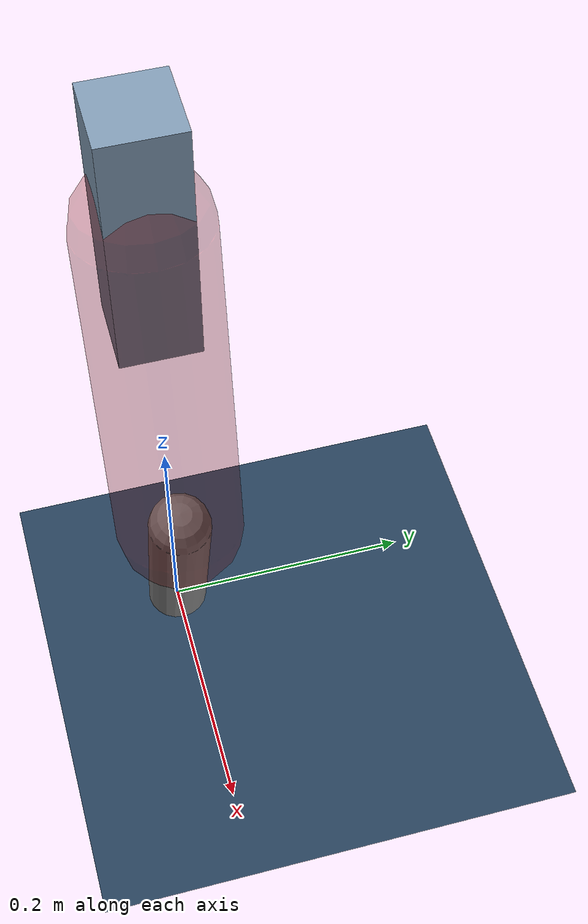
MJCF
<mujoco model="Hopper2D">
	<compiler inertiafromgeom="true" angle="radian" />
	<option timestep="0.001" integrator="implicit" cone="elliptic" solver="Newton" tolerance="1e-10" />

	<default>
		<geom contype="1" conaffinity="1" condim="3" friction="2 0.005 0.0001" solref="0.005 1" />
		<joint limited="true" damping="0.1" />
	</default>

	<asset>
		<texture name="skybox" type="skybox" builtin="gradient" rgb1=".4 .6 .8" rgb2="0 0 0" width="800" height="800" />
		<texture name="grid" type="2d" builtin="checker" rgb1=".1 .2 .3" rgb2=".2 .3 .4" width="300" height="300" mark="edge" markrgb=".2 .3 .4" />
		<material name="ground" texture="grid" texrepeat="1 1" texuniform="true" reflectance="0.1" />
		<material name="leg" rgba="0.5 0.6 0.7 1" />
	</asset>

	<worldbody>

		<geom name="floor" type="plane" size="5 5 0.25" material="ground" />

		<light directional="false" diffuse="0.8 0.8 0.8" specular="0.3 0.3 0.3" pos="0 0 2" dir="0 0 -1" />
		<light mode="targetbodycom" target="base" directional="false" diffuse="0.8 0.8 0.8" specular="0.3 0.3 0.3" pos="0 0 2" dir="0 0 -1" />

		<camera name="fixed" pos="0 -2 1" xyaxes="1 0 0 0 0 1" />
		<camera name="tracking" mode="trackcom" pos="0 -3 1" />

		<body name="root" pos="0 0 0.4528493251511524">
			<joint name="slide_x" type="slide" axis="1 0 0" range="-100 100" />
			<joint name="slide_z" type="slide" axis="0 0 1" range="0 10" />

			<body name="base" pos="0 0 0">
				<geom name="torso" type="box" size="0.03 0.03 0.1" mass="2.915" material="leg" />

				<body name="link1" pos="0 0 0" euler="0 1.406526204249596 0">
					<joint type="hinge" axis="0 -1 0" pos="0 0 0" name="hinge1" limited="true" range="-3.14 3.14" stiffness="0" damping="0.1" />
					<geom name="thigh" type="capsule" fromto="0 0 0 0.28444439417619016 0 0" size="0.05" rgba="0.5 0 0 0.3" mass="0.9469554248580945" />

					<body name="link2" pos="0.28444439417619016 0 0" euler="0 0.4280503464079334 0">
						<joint type="hinge" axis="0 -1 0" pos="0 0 0" name="hinge2" limited="true" range="-3.14 3.14" stiffness="0" damping="0.1" />
						<geom name="shank" type="capsule" fromto="0 0 0 0.17840493097496227 0 0" size="0.025" mass="0.3825239447799698" />

					</body>
				</body>
			</body>
		</body>
	</worldbody>

	<actuator>
		<motor name="torque1" joint="hinge1" ctrlrange="-109.31361044736012 109.31361044736012" ctrllimited="true" gear="1" />
		<motor name="torque2" joint="hinge2" ctrlrange="-103.45358583931075 103.45358583931075" ctrllimited="true" gear="1" />
	</actuator>
</mujoco>
